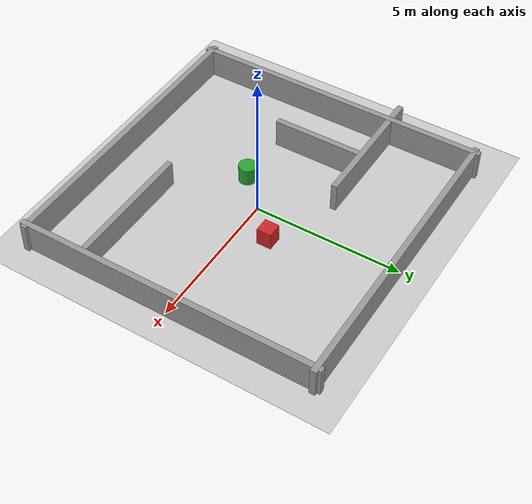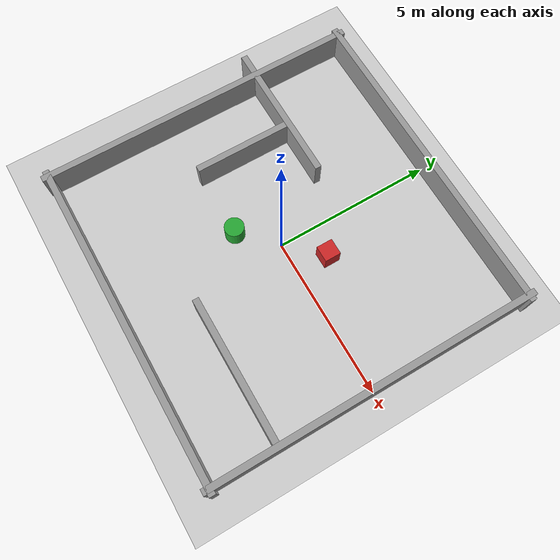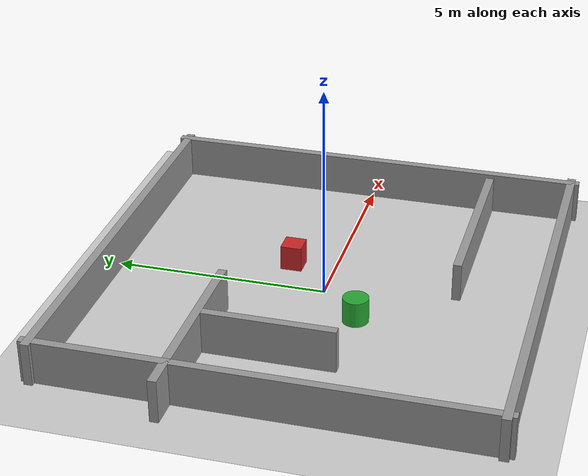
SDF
<?xml version="1.0" ?>
<sdf version="1.6">
  <world name="default">
    <!-- 光源和地面 -->
    <include><uri>model://sun</uri></include>
    <include><uri>model://ground_plane</uri></include>

    <!-- 所有墙面合并为一个整体模型（设置为静态） -->
    <model name="all_walls">
      <static>true</static>  <!-- 墙体设置为静态模型，不随外力移动 -->
      <pose>0 0 0 0 0 0</pose> <!-- 整体模型原点（子链接位置相对世界坐标系） -->

      <!-- 外围墙（完全闭合） -->
      <link name="wall1_link"> <!-- 上围墙 -->
        <pose>0 5 0.5 0 0 0</pose>
        <collision name="wall1_collision">
          <geometry><box><size>10.4 0.2 1</size></box></geometry>
        </collision>
        <visual name="wall1_visual">
          <geometry><box><size>10.4 0.2 1</size></box></geometry>
          <material><script><uri>file://media/materials/scripts/gazebo.material</uri><name>Gazebo/Grey</name></script></material>
        </visual>
      </link>

      <link name="wall2_link"> <!-- 下围墙 -->
        <pose>0 -5 0.5 0 0 0</pose>
        <collision name="wall2_collision">
          <geometry><box><size>10.4 0.2 1</size></box></geometry>
        </collision>
        <visual name="wall2_visual">
          <geometry><box><size>10.4 0.2 1</size></box></geometry>
          <material><script><uri>file://media/materials/scripts/gazebo.material</uri><name>Gazebo/Grey</name></script></material>
        </visual>
      </link>

      <link name="wall3_link"> <!-- 右围墙 -->
        <pose>5 0 0.5 0 0 0</pose>
        <collision name="wall3_collision">
          <geometry><box><size>0.2 10.4 1</size></box></geometry>
        </collision>
        <visual name="wall3_visual">
          <geometry><box><size>0.2 10.4 1</size></box></geometry>
          <material><script><uri>file://media/materials/scripts/gazebo.material</uri><name>Gazebo/Grey</name></script></material>
        </visual>
      </link>

      <link name="wall4_link"> <!-- 左围墙 -->
        <pose>-5 0 0.5 0 0 0</pose>
        <collision name="wall4_collision">
          <geometry><box><size>0.2 10.4 1</size></box></geometry>
        </collision>
        <visual name="wall4_visual">
          <geometry><box><size>0.2 10.4 1</size></box></geometry>
          <material><script><uri>file://media/materials/scripts/gazebo.material</uri><name>Gazebo/Grey</name></script></material>
        </visual>
      </link>

      <!-- 内部墙壁 -->
      <link name="inner_wall1_link">
        <pose>-3.5 2 0.5 0 0 0</pose>
        <collision name="inner_wall1_collision">
          <geometry><box><size>4.5 0.2 1</size></box></geometry>
        </collision>
        <visual name="inner_wall1_visual">
          <geometry><box><size>4.5 0.2 1</size></box></geometry>
          <material><script><uri>file://media/materials/scripts/gazebo.material</uri><name>Gazebo/Grey</name></script></material>
        </visual>
      </link>

      <link name="inner_wall2_link">
        <pose>2.7 -3 0.4 0 0 0</pose>
        <collision name="inner_wall2_collision">
          <geometry><box><size>4.5 0.2 1</size></box></geometry>
        </collision>
        <visual name="inner_wall2_visual">
          <geometry><box><size>4.5 0.2 1</size></box></geometry>
          <material><script><uri>file://media/materials/scripts/gazebo.material</uri><name>Gazebo/Grey</name></script></material>
        </visual>
      </link>

      <link name="inner_wall3_link">
        <pose>-3 0.4 0.5 0 0 0</pose>
        <collision name="inner_wall3_collision">
          <geometry><box><size>0.2 3 1</size></box></geometry>
        </collision>
        <visual name="inner_wall3_visual">
          <geometry><box><size>0.2 3 1</size></box></geometry>
          <material><script><uri>file://media/materials/scripts/gazebo.material</uri><name>Gazebo/Grey</name></script></material>
        </visual>
      </link>

      <!-- 固定链接（静态模型无需额外关节，默认保持相对位置） -->
    </model>

    <!-- 障碍物1（设置为静态） -->
    <model name="obstacle1">
      <static>true</static>  <!-- 障碍物1设置为静态模型 -->
      <pose>1 1 0.3 0 0 0</pose>
      <link name="link">
        <collision name="obstacle1_collision">
          <geometry><box><size>0.5 0.5 0.6</size></box></geometry>
        </collision>
        <visual name="obstacle1_visual">
          <geometry><box><size>0.5 0.5 0.6</size></box></geometry>
          <material><script><uri>file://media/materials/scripts/gazebo.material</uri><name>Gazebo/Red</name></script></material>
        </visual>
      </link>
    </model>

    <!-- 障碍物2（设置为静态） -->
    <model name="obstacle2">
      <static>true</static>  <!-- 障碍物2设置为静态模型 -->
      <pose>-1 -1 0.3 0 0 0</pose>
      <link name="link">
        <collision name="obstacle2_collision">
          <geometry><cylinder><radius>0.3</radius><length>0.6</length></cylinder></geometry>
        </collision>
        <visual name="obstacle2_visual">
          <geometry><cylinder><radius>0.3</radius><length>0.6</length></cylinder></geometry>
          <material><script><uri>file://media/materials/scripts/gazebo.material</uri><name>Gazebo/Green</name></script></material>
        </visual>
      </link>
    </model>
  </world>
</sdf>
